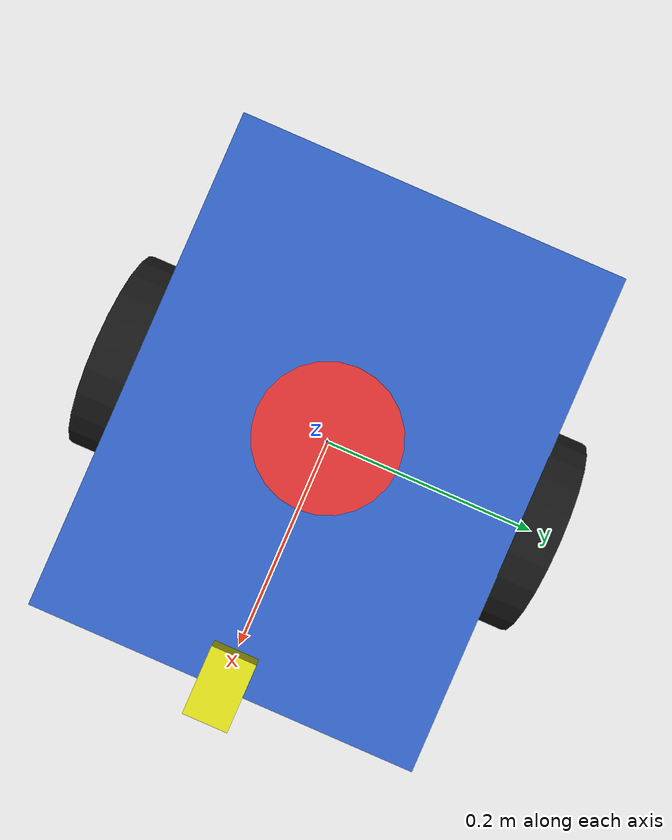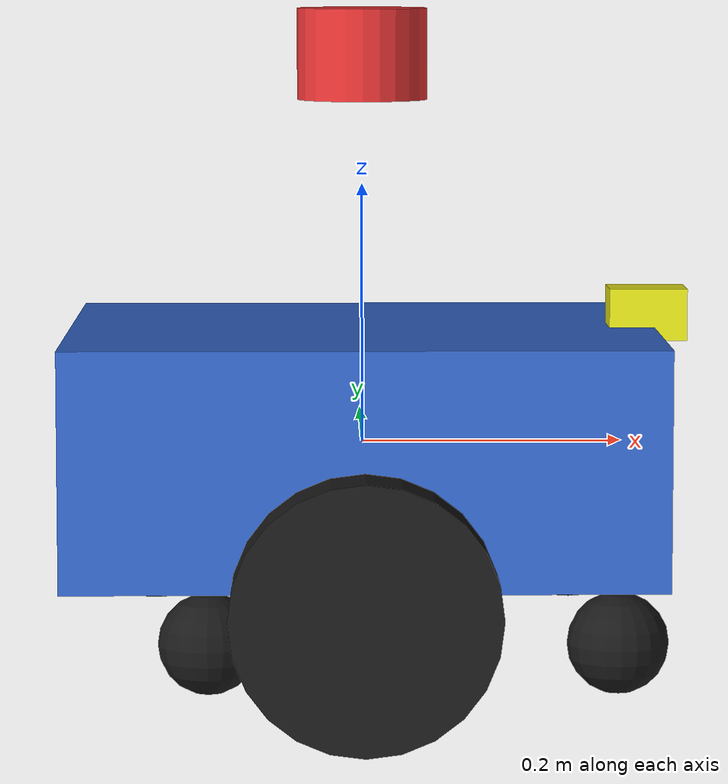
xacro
<?xml version="1.0"?>
<robot name="inspection_robot" xmlns:xacro="http://www.ros.org/wiki/xacro">

  <!-- ==================== ① 底盘参数 ==================== -->
  <xacro:property name="chassis_length" value="0.45"/>
  <xacro:property name="chassis_width"  value="0.35"/>
  <xacro:property name="chassis_height" value="0.18"/>
  <xacro:property name="chassis_mass"   value="8.0"/>

  <!-- ==================== ② 驱动轮参数 (2个) ==================== -->
  <xacro:property name="wheel_radius"     value="0.10"/>
  <xacro:property name="wheel_width"      value="0.06"/>
  <xacro:property name="wheel_separation" value="0.40"/>  <!-- 左右轮中心距, 与 DiffDrive 插件 wheel_separation 一致 -->
  <xacro:property name="wheel_mass"       value="0.8"/>
  <xacro:property name="wheel_z"          value="-0.10"/> <!-- 轮心相对 base_link 的 z 偏移; = -wheel_radius 使轮底缘贴地 z=0 -->
  <!-- 注: 曾为 -0.08 导致轮底缘 z=0.02 悬空 2cm; 连同 caster_z 一起修正, 否则底盘在驱动轮轴上前后倾倒 ~22° (相机视角乱指, 用户见"低头") -->

  <!-- ==================== ③ 被动万向轮参数 (2个, 对角布置) ==================== -->
  <xacro:property name="caster_radius" value="0.04"/>
  <xacro:property name="caster_mass"   value="0.2"/>
  <xacro:property name="caster_x"      value="0.16"/>
  <xacro:property name="caster_y"      value="0.0"/>
  <!-- caster_y=0: 两万向轮置于车体中轴线上(经典 2 轮 + 前/后中轴万向轮)。
       作用: 万向轮拖曳阻力经过 y=0, 不产生偏航力矩 → 消除恒定右偏(曾 ~6°,
       且随 caster_x 前移加重; 曾 y=±0.13 对角布置产生持续右偏)。 -->
  <xacro:property name="caster_z"      value="-0.16"/> <!-- = -caster_radius - 轮底修正(-0.10) 使万向轮底缘贴地 z=0; 曾为 -0.08 悬空 8cm 致底盘倾倒 -->
  <!-- 几何校验: base_link 高 0.20 时, 驱动轮心 z=0.10 底缘 0, 万向轮心 z=0.04 底缘 0, 四轮着地水平 -->

  <!-- ==================== ④ RGB 相机安装位姿 (联合标定改这里) ==================== -->
  <xacro:property name="camera_x"    value="0.22"/>
  <xacro:property name="camera_y"    value="0.0"/>
  <xacro:property name="camera_z"    value="0.10"/>
  <xacro:property name="camera_roll" value="0.0"/>
  <xacro:property name="camera_pitch" value="0.0"/>
  <xacro:property name="camera_yaw"  value="0.0"/>

  <!-- ==================== ⑤ IMU 安装位姿 (联合标定改这里) ==================== -->
  <xacro:property name="imu_x" value="0.0"/>
  <xacro:property name="imu_y" value="0.0"/>
  <xacro:property name="imu_z" value="0.02"/>

  <!-- ==================== ⑥ 16线激光雷达安装位姿 (联合标定改这里) ==================== -->
  <xacro:property name="lidar_x" value="0.0"/>
  <xacro:property name="lidar_y" value="0.0"/>
  <xacro:property name="lidar_z" value="0.30"/>

  <!-- ==================== 材质 ==================== -->
  <material name="chassis_mat"><color rgba="0.2 0.4 0.8 1.0"/></material>
  <material name="wheel_mat"><color rgba="0.1 0.1 0.1 1.0"/></material>
  <material name="camera_mat"><color rgba="0.9 0.9 0.1 1.0"/></material>
  <material name="imu_mat"><color rgba="0.1 0.8 0.2 1.0"/></material>
  <material name="lidar_mat"><color rgba="0.9 0.2 0.2 1.0"/></material>

  <!-- ==================== base_link (底盘/根连杆) ==================== -->
  <link name="base_link">
    <inertial>
      <mass value="${chassis_mass}"/>
      <inertia ixx="0.10" iyy="0.16" izz="0.22" ixy="0" ixz="0" iyz="0"/>
    </inertial>
    <visual>
      <origin xyz="0 0 0" rpy="0 0 0"/>
      <geometry><box size="${chassis_length} ${chassis_width} ${chassis_height}"/></geometry>
      <material name="chassis_mat"/>
    </visual>
    <collision>
      <origin xyz="0 0 0" rpy="0 0 0"/>
      <geometry><box size="${chassis_length} ${chassis_width} ${chassis_height}"/></geometry>
    </collision>
  </link>

  <!-- ==================== 左驱动轮 ==================== -->
  <link name="left_wheel">
    <inertial>
      <mass value="${wheel_mass}"/>
      <inertia ixx="0.0023" iyy="0.0023" izz="0.004" ixy="0" ixz="0" iyz="0"/>
    </inertial>
    <visual>
      <origin xyz="0 0 0" rpy="${pi/2} 0 0"/>
      <geometry><cylinder radius="${wheel_radius}" length="${wheel_width}"/></geometry>
      <material name="wheel_mat"/>
    </visual>
    <collision>
      <origin xyz="0 0 0" rpy="${pi/2} 0 0"/>
      <geometry><cylinder radius="${wheel_radius}" length="${wheel_width}"/></geometry>
    </collision>
  </link>
  <joint name="left_wheel_joint" type="continuous">
    <parent link="base_link"/>
    <child link="left_wheel"/>
    <origin xyz="0 ${wheel_separation/2} ${wheel_z}" rpy="0 0 0"/>
    <axis xyz="0 1 0"/>
    <limit effort="100" velocity="10"/>
  </joint>

  <!-- ==================== 右驱动轮 ==================== -->
  <link name="right_wheel">
    <inertial>
      <mass value="${wheel_mass}"/>
      <inertia ixx="0.0023" iyy="0.0023" izz="0.004" ixy="0" ixz="0" iyz="0"/>
    </inertial>
    <visual>
      <origin xyz="0 0 0" rpy="${pi/2} 0 0"/>
      <geometry><cylinder radius="${wheel_radius}" length="${wheel_width}"/></geometry>
      <material name="wheel_mat"/>
    </visual>
    <collision>
      <origin xyz="0 0 0" rpy="${pi/2} 0 0"/>
      <geometry><cylinder radius="${wheel_radius}" length="${wheel_width}"/></geometry>
    </collision>
  </link>
  <joint name="right_wheel_joint" type="continuous">
    <parent link="base_link"/>
    <child link="right_wheel"/>
    <origin xyz="0 -${wheel_separation/2} ${wheel_z}" rpy="0 0 0"/>
    <axis xyz="0 1 0"/>
    <limit effort="100" velocity="10"/>
  </joint>

  <!-- 前左 swivel 万向轮 -->
  <link name="caster_front_left_shaft">
    <inertial>
      <mass value="0.08"/>
      <inertia ixx="0.0001" iyy="0.0001" izz="0.0001" ixy="0" ixz="0" iyz="0"/>
    </inertial>
    <visual>
      <origin xyz="0 0 0" rpy="0 0 0"/>
      <geometry><cylinder radius="0.015" length="0.04"/></geometry>
      <material name="wheel_mat"/>
    </visual>
  </link>
  <joint name="caster_front_left_swivel" type="continuous">
    <parent link="base_link"/>
    <child link="caster_front_left_shaft"/>
    <origin xyz="${caster_x} ${caster_y} -0.10" rpy="0 0 0"/>
    <axis xyz="0 0 1"/>
    <!-- 转轴阻尼: 抑制出生落地/行驶时万向轮自由摆动(否则随机残留 ~5° 航向偏置) -->
    <dynamics damping="0.3"/>
  </joint>
  <link name="caster_front_left_wheel">
    <inertial>
      <mass value="${caster_mass}"/>
      <inertia ixx="0.0002" iyy="0.0002" izz="0.0002" ixy="0" ixz="0" iyz="0"/>
    </inertial>
    <visual>
      <origin xyz="0 0 0" rpy="0 0 0"/>
      <geometry><sphere radius="${caster_radius}"/></geometry>
      <material name="wheel_mat"/>
    </visual>
    <collision>
      <origin xyz="0 0 0" rpy="0 0 0"/>
      <geometry><sphere radius="${caster_radius}"/></geometry>
    </collision>
  </link>
  <joint name="caster_front_left_wheel_joint" type="continuous">
    <parent link="caster_front_left_shaft"/>
    <child link="caster_front_left_wheel"/>
    <origin xyz="0.04 0 -0.06" rpy="0 0 0"/>
    <axis xyz="0 1 0"/>
  </joint>

  <!-- 后右 swivel 万向轮 -->
  <link name="caster_rear_right_shaft">
    <inertial>
      <mass value="0.08"/>
      <inertia ixx="0.0001" iyy="0.0001" izz="0.0001" ixy="0" ixz="0" iyz="0"/>
    </inertial>
    <visual>
      <origin xyz="0 0 0" rpy="0 0 0"/>
      <geometry><cylinder radius="0.015" length="0.04"/></geometry>
      <material name="wheel_mat"/>
    </visual>
  </link>
  <joint name="caster_rear_right_swivel" type="continuous">
    <parent link="base_link"/>
    <child link="caster_rear_right_shaft"/>
    <origin xyz="-${caster_x} -${caster_y} -0.10" rpy="0 0 0"/>
    <axis xyz="0 0 1"/>
    <!-- 转轴阻尼: 抑制出生落地/行驶时万向轮自由摆动(否则随机残留 ~5° 航向偏置) -->
    <dynamics damping="0.3"/>
  </joint>
  <link name="caster_rear_right_wheel">
    <inertial>
      <mass value="${caster_mass}"/>
      <inertia ixx="0.0002" iyy="0.0002" izz="0.0002" ixy="0" ixz="0" iyz="0"/>
    </inertial>
    <visual>
      <origin xyz="0 0 0" rpy="0 0 0"/>
      <geometry><sphere radius="${caster_radius}"/></geometry>
      <material name="wheel_mat"/>
    </visual>
    <collision>
      <origin xyz="0 0 0" rpy="0 0 0"/>
      <geometry><sphere radius="${caster_radius}"/></geometry>
    </collision>
  </link>
  <joint name="caster_rear_right_wheel_joint" type="continuous">
    <parent link="caster_rear_right_shaft"/>
    <child link="caster_rear_right_wheel"/>
    <origin xyz="0.04 0 -0.06" rpy="0 0 0"/>
    <axis xyz="0 1 0"/>
  </joint>

  <!-- ==================== RGB 相机 ==================== -->
  <link name="camera_link">
    <inertial>
      <mass value="0.1"/>
      <inertia ixx="0.0001" iyy="0.0001" izz="0.0001" ixy="0" ixz="0" iyz="0"/>
    </inertial>
    <visual>
      <origin xyz="0 0 0" rpy="0 0 0"/>
      <geometry><box size="0.06 0.04 0.04"/></geometry>
      <material name="camera_mat"/>
    </visual>
    <collision>
      <origin xyz="0 0 0" rpy="0 0 0"/>
      <geometry><box size="0.06 0.04 0.04"/></geometry>
    </collision>
  </link>
  <joint name="camera_joint" type="fixed">
    <parent link="base_link"/>
    <child link="camera_link"/>
    <origin xyz="${camera_x} ${camera_y} ${camera_z}"
            rpy="${camera_roll} ${camera_pitch} ${camera_yaw}"/>
  </joint>

  <!-- ==================== IMU ==================== -->
  <link name="imu_link">
    <inertial>
      <mass value="0.05"/>
      <inertia ixx="0.0001" iyy="0.0001" izz="0.0001" ixy="0" ixz="0" iyz="0"/>
    </inertial>
    <visual>
      <origin xyz="0 0 0" rpy="0 0 0"/>
      <geometry><box size="0.04 0.04 0.02"/></geometry>
      <material name="imu_mat"/>
    </visual>
    <collision>
      <origin xyz="0 0 0" rpy="0 0 0"/>
      <geometry><box size="0.04 0.04 0.02"/></geometry>
    </collision>
  </link>
  <joint name="imu_joint" type="fixed">
    <parent link="base_link"/>
    <child link="imu_link"/>
    <origin xyz="${imu_x} ${imu_y} ${imu_z}" rpy="0 0 0"/>
  </joint>

  <!-- ==================== 16线激光雷达 (顶部桅杆) ==================== -->
  <link name="lidar_link">
    <inertial>
      <mass value="0.5"/>
      <inertia ixx="0.001" iyy="0.001" izz="0.001" ixy="0" ixz="0" iyz="0"/>
    </inertial>
    <visual>
      <origin xyz="0 0 0" rpy="0 0 0"/>
      <geometry><cylinder radius="0.05" length="0.07"/></geometry>
      <material name="lidar_mat"/>
    </visual>
    <collision>
      <origin xyz="0 0 0" rpy="0 0 0"/>
      <geometry><cylinder radius="0.05" length="0.07"/></geometry>
    </collision>
  </link>
  <joint name="lidar_joint" type="fixed">
    <parent link="base_link"/>
    <child link="lidar_link"/>
    <origin xyz="${lidar_x} ${lidar_y} ${lidar_z}" rpy="0 0 0"/>
  </joint>

  <gazebo reference="left_wheel">
    <collision name="left_wheel_collision">
      <surface><friction><ode><mu>1.0</mu><mu2>1.0</mu2></ode></friction></surface>
    </collision>
  </gazebo>
  <gazebo reference="right_wheel">
    <collision name="right_wheel_collision">
      <surface><friction><ode><mu>1.0</mu><mu2>1.0</mu2></ode></friction></surface>
    </collision>
  </gazebo>
  <gazebo reference="caster_front_left_wheel">
    <collision name="caster_front_left_wheel_collision">
      <surface><friction><ode><mu>0.3</mu><mu2>0.3</mu2></ode></friction></surface>
    </collision>
  </gazebo>
  <gazebo reference="caster_rear_right_wheel">
    <collision name="caster_rear_right_wheel_collision">
      <surface><friction><ode><mu>0.3</mu><mu2>0.3</mu2></ode></friction></surface>
    </collision>
  </gazebo>

  <gazebo>
    <plugin filename="gz-sim-diff-drive-system" name="gz::sim::systems::DiffDrive">
      <left_joint>left_wheel_joint</left_joint>
      <right_joint>right_wheel_joint</right_joint>
      <wheel_separation>${wheel_separation}</wheel_separation>
      <wheel_radius>${wheel_radius}</wheel_radius>
      <odom_publish_frequency>20</odom_publish_frequency>
      <max_linear_velocity>1.0</max_linear_velocity>
      <max_angular_velocity>2.0</max_angular_velocity>
      <linear_odometry_factor>1.0</linear_odometry_factor>
    </plugin>
  </gazebo>

  <!-- RGB 相机 (固定关节, 装在前方) -->
  <gazebo reference="camera_link">
    <sensor type="camera" name="camera">
      <always_on>1</always_on>
      <update_rate>30</update_rate>
      <topic>/camera</topic>
      <camera>
        <horizontal_fov>1.047</horizontal_fov>
        <image>
          <width>1280</width>
          <height>720</height>
        </image>
        <clip>
          <near>0.1</near>
          <far>50</far>
        </clip>
      </camera>
      <!-- 相机由世界级 gz-sim-sensors-system 统一管理(Harmonic), 无需单独插件 -->
    </sensor>
  </gazebo>

  <!-- IMU -->
  <gazebo reference="imu_link">
    <sensor type="imu" name="imu">
      <always_on>1</always_on>
      <update_rate>200</update_rate>
      <topic>/imu</topic>
      <!-- 注意: Harmonic 的 Sensors 系统不处理 imu 类型, imu 需要单独的 imu-system 插件 -->
      <plugin filename="gz-sim-imu-system" name="gz::sim::systems::Imu"></plugin>
    </sensor>
  </gazebo>

  <!-- 16线激光雷达 (顶部, 360°水平 / 30°垂直 / 16线)
       注意: Harmonic 不支持普通 lidar 传感器(gz日志: "Sensor type LIDAR not supported yet"),
       必须用 gpu_lidar(GpuLidarSensor, 基于渲染引擎) -->
  <gazebo reference="lidar_link">
    <sensor type="gpu_lidar" name="lidar">
      <always_on>1</always_on>
      <update_rate>10</update_rate>
      <topic>/lidar/points</topic>
      <lidar>
        <scan>
          <horizontal>
            <samples>1800</samples>
            <resolution>1</resolution>
            <min_angle>-3.14159</min_angle>
            <max_angle>3.14159</max_angle>
          </horizontal>
          <vertical>
            <samples>16</samples>
            <resolution>1</resolution>
            <min_angle>-0.261799</min_angle>
            <max_angle>0.261799</max_angle>
          </vertical>
        </scan>
        <range>
          <min>0.2</min>
          <max>50</max>
        </range>
      </lidar>
      <!-- 激光雷达由世界级 gz-sim-sensors-system 统一管理(Harmonic), 无需单独插件 -->
    </sensor>
  </gazebo>

</robot>
